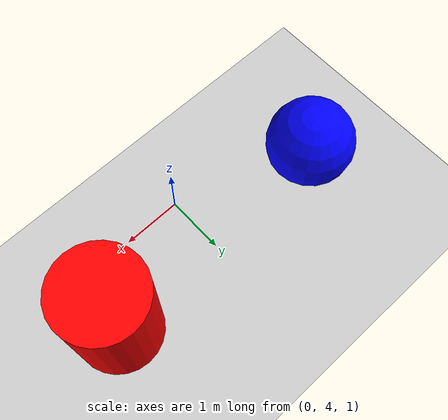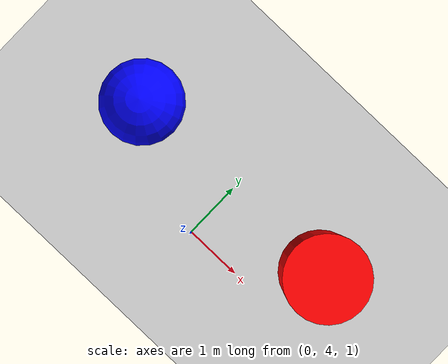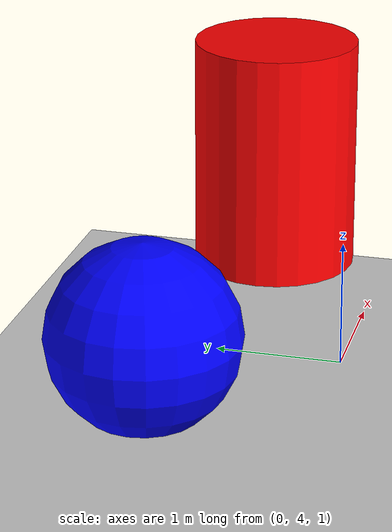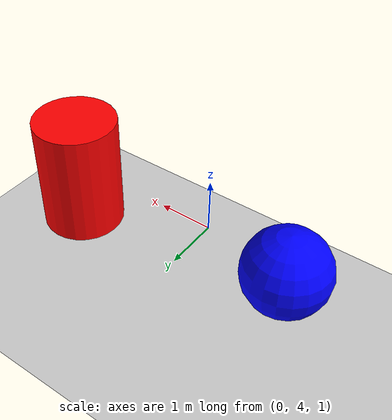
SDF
<?xml version="1.0"?>
<sdf version="1.6">
  <world name="my_world">
    <!-- 添加地面 -->
    <include>
      <uri>model://ground_plane</uri>
    </include>
    <include>
      <uri>model://sun</uri>
    </include>
    <!-- 添加圆柱体 -->
    <model name="cylinder">
      <pose>2 5 2 0 0 0</pose>
      <link name="link">
        <collision name="collision">
          <geometry>
            <cylinder>
              <radius>0.7</radius>
              <length>2.0</length>
            </cylinder>
          </geometry>
        </collision>
        <visual name="visual">
          <geometry>
            <cylinder>
              <radius>0.7</radius>
              <length>2.0</length>
            </cylinder>
          </geometry>
          <material>
            <ambient>1 0 0 1</ambient> <!-- 红色 -->
          </material>
        </visual>
      </link>
    </model>

    <!-- 添加球体 -->
    <model name="sphere">
      <pose>-2 5 2 0 0 0</pose>
      <link name="link">
        <collision name="collision">
          <geometry>
            <sphere>
              <radius>0.7</radius>
            </sphere>
          </geometry>
        </collision>
        <visual name="visual">
          <geometry>
            <sphere>
              <radius>0.7</radius>
            </sphere>
          </geometry>
          <material>
            <ambient>0 0 1 1</ambient> <!-- 蓝色 -->
          </material>
        </visual>
      </link>
    </model>

  </world>
</sdf>
